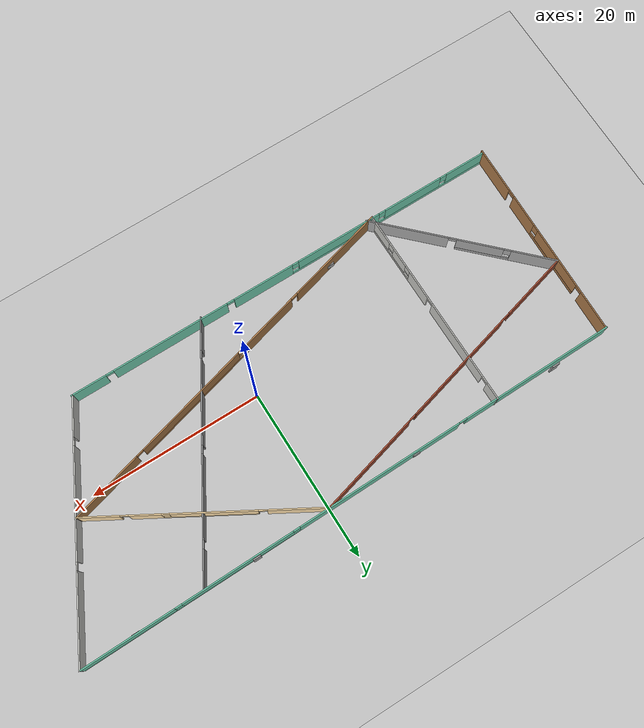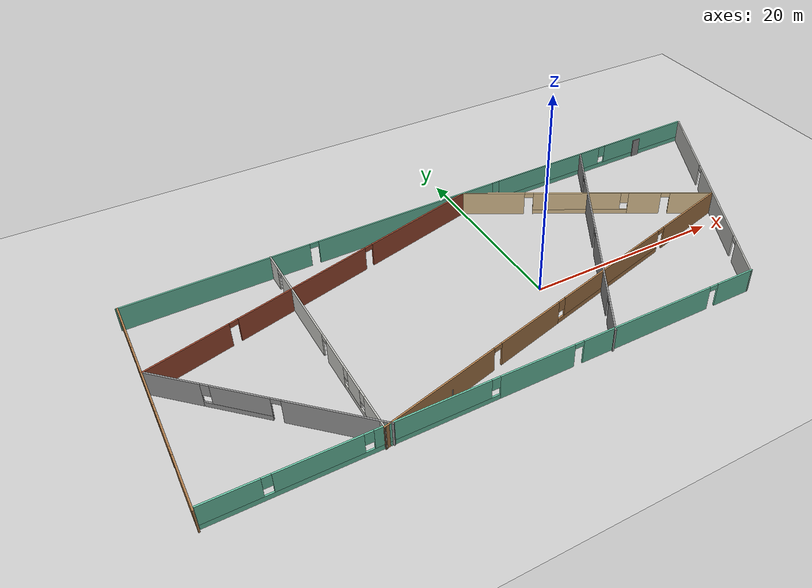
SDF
<sdf version="1.7">
 <world name="default">
  <model name="ground_plane">
   <static>1</static>
   <link name="link">
    <collision name="collision">
     <geometry><plane><normal>0 0 1</normal><size>100 100</size></plane></geometry>
     <surface>
      <contact><collide_bitmask>65535</collide_bitmask></contact>
      <friction><ode><mu>100</mu><mu2>50</mu2></ode></friction>
     </surface>
    </collision>
    <visual name="visual">
     <cast_shadows>0</cast_shadows>
     <geometry><plane><normal>0 0 1</normal><size>100 100</size></plane></geometry>
     <material>
      <script><uri>file://media/materials/scripts/gazebo.material</uri><name>Gazebo/Grey</name></script>
     </material>
    </visual>
   </link>
  </model>
  <model name="Building">
   <pose>-3.14962 2.4136 0 0 -0 0</pose>
   <link name="Door_0">
    <collision name="Door_0_Collision">
     <geometry><box><size>0.9 0.17 2</size></box></geometry>
     <pose>0 0 1 0 -0 0</pose>
    </collision>
    <visual name="Door_0_Visual">
     <pose>0 0 1 0 -0 0</pose>
     <geometry><box><size>0.9 0.17 2</size></box></geometry>
     <material>
      <script><uri>file://media/materials/scripts/gazebo.material</uri><name>Gazebo/Grey</name></script>
     </material>
    </visual>
    <pose>-25.1642 11.9657 0 0 -0 0</pose>
   </link>
   <link name="Door_19">
    <collision name="Door_19_Collision">
     <geometry><box><size>0.9 0.17 2</size></box></geometry>
     <pose>0 0 1 0 -0 0</pose>
    </collision>
    <visual name="Door_19_Visual">
     <pose>0 0 1 0 -0 0</pose>
     <geometry><box><size>0.9 0.17 2</size></box></geometry>
     <material>
      <script><uri>file://media/materials/scripts/gazebo.material</uri><name>Gazebo/Grey</name></script>
     </material>
    </visual>
    <pose>26.0112 12.2744 0 0 -0 0</pose>
   </link>
   <link name="Door_25">
    <collision name="Door_25_Collision">
     <geometry><box><size>0.9 0.17 2</size></box></geometry>
     <pose>0 0 1 0 -0 0</pose>
    </collision>
    <visual name="Door_25_Visual">
     <pose>0 0 1 0 -0 0</pose>
     <geometry><box><size>0.9 0.17 2</size></box></geometry>
     <material>
      <script><uri>file://media/materials/scripts/gazebo.material</uri><name>Gazebo/Grey</name></script>
     </material>
    </visual>
    <pose>12.012 12.3054 0 0 -0 0</pose>
   </link>
   <link name="Wall_0">
    <pose>-32.1052 -0.483581 0 0 -0 1.54834</pose>
    <visual name="Wall_0_Visual_0">
     <pose>-9.26842 0 1.25 0 -0 0</pose>
     <geometry><box><size>5.57682 0.15 2.5</size></box></geometry>
     <material>
      <script><uri>file://media/materials/scripts/gazebo.material</uri><name>Gazebo/Wood</name></script>
      <ambient>1 1 1 1</ambient>
     </material>
     <meta><layer>0</layer></meta>
    </visual>
    <collision name="Wall_0_Collision_0">
     <geometry><box><size>5.57682 0.15 2.5</size></box></geometry>
     <pose>-9.26842 0 1.25 0 -0 0</pose>
    </collision>
    <visual name="Wall_0_Visual_1">
     <pose>-3.61912 0 1.25 0 -0 0</pose>
     <geometry><box><size>3.92177 0.15 2.5</size></box></geometry>
     <material>
      <script><uri>file://media/materials/scripts/gazebo.material</uri><name>Gazebo/Wood</name></script>
      <ambient>1 1 1 1</ambient>
     </material>
     <meta><layer>0</layer></meta>
    </visual>
    <collision name="Wall_0_Collision_1">
     <geometry><box><size>3.92177 0.15 2.5</size></box></geometry>
     <pose>-3.61912 0 1.25 0 -0 0</pose>
    </collision>
    <visual name="Wall_0_Visual_2">
     <pose>9.71831 0 1.25 0 -0 0</pose>
     <geometry><box><size>4.67703 0.15 2.5</size></box></geometry>
     <material>
      <script><uri>file://media/materials/scripts/gazebo.material</uri><name>Gazebo/Wood</name></script>
      <ambient>1 1 1 1</ambient>
     </material>
     <meta><layer>0</layer></meta>
    </visual>
    <collision name="Wall_0_Collision_2">
     <geometry><box><size>4.67703 0.15 2.5</size></box></geometry>
     <pose>9.71831 0 1.25 0 -0 0</pose>
    </collision>
    <visual name="Wall_0_Visual_3">
     <pose>2.41078 0 0.25 0 -0 0</pose>
     <geometry><box><size>8.13804 0.15 0.5</size></box></geometry>
     <material>
      <script><uri>file://media/materials/scripts/gazebo.material</uri><name>Gazebo/Wood</name></script>
      <ambient>1 1 1 1</ambient>
     </material>
     <meta><layer>0</layer></meta>
    </visual>
    <collision name="Wall_0_Collision_3">
     <geometry><box><size>8.13804 0.15 0.5</size></box></geometry>
     <pose>2.41078 0 0.25 0 -0 0</pose>
    </collision>
    <visual name="Wall_0_Visual_4">
     <pose>2.81078 0 1.5 0 -0 0</pose>
     <geometry><box><size>7.33803 0.15 2</size></box></geometry>
     <material>
      <script><uri>file://media/materials/scripts/gazebo.material</uri><name>Gazebo/Wood</name></script>
      <ambient>1 1 1 1</ambient>
     </material>
     <meta><layer>0</layer></meta>
    </visual>
    <collision name="Wall_0_Collision_4">
     <geometry><box><size>7.33803 0.15 2</size></box></geometry>
     <pose>2.81078 0 1.5 0 -0 0</pose>
    </collision>
    <visual name="Wall_0_Visual_5">
     <pose>-1.25824 0 1.9 0 -0 0</pose>
     <geometry><box><size>0.8 0.15 1.2</size></box></geometry>
     <material>
      <script><uri>file://media/materials/scripts/gazebo.material</uri><name>Gazebo/Wood</name></script>
      <ambient>1 1 1 1</ambient>
     </material>
     <meta><layer>0</layer></meta>
    </visual>
    <collision name="Wall_0_Collision_5">
     <geometry><box><size>0.8 0.15 1.2</size></box></geometry>
     <pose>-1.25824 0 1.9 0 -0 0</pose>
    </collision>
    <visual name="Wall_0_Visual_6">
     <pose>-6.03001 0 2.25 0 -0 0</pose>
     <geometry><box><size>0.9 0.15 0.5</size></box></geometry>
     <material>
      <script><uri>file://media/materials/scripts/gazebo.material</uri><name>Gazebo/Wood</name></script>
      <ambient>1 1 1 1</ambient>
     </material>
     <meta><layer>0</layer></meta>
    </visual>
    <collision name="Wall_0_Collision_6">
     <geometry><box><size>0.9 0.15 0.5</size></box></geometry>
     <pose>-6.03001 0 2.25 0 -0 0</pose>
    </collision>
    <visual name="Wall_0_Visual_7">
     <pose>6.9298 0 2.25 0 -0 0</pose>
     <geometry><box><size>0.9 0.15 0.5</size></box></geometry>
     <material>
      <script><uri>file://media/materials/scripts/gazebo.material</uri><name>Gazebo/Wood</name></script>
      <ambient>1 1 1 1</ambient>
     </material>
     <meta><layer>0</layer></meta>
    </visual>
    <collision name="Wall_0_Collision_7">
     <geometry><box><size>0.9 0.15 0.5</size></box></geometry>
     <pose>6.9298 0 2.25 0 -0 0</pose>
    </collision>
   </link>
   <link name="Wall_1">
    <pose>0.1492 11.9795 0 0 -0 0.015088</pose>
    <visual name="Wall_1_Visual_0">
     <pose>-23.0722 0 1.25 0 -0 0</pose>
     <geometry><box><size>18.1988 0.15 2.5</size></box></geometry>
     <material>
      <script><uri>file://media/materials/scripts/gazebo.material</uri><name>Gazebo/Grey</name></script>
      <ambient>0.435294 0.796078 0.67451 1</ambient>
     </material>
     <meta><layer>0</layer></meta>
    </visual>
    <collision name="Wall_1_Collision_0">
     <geometry><box><size>18.1988 0.15 2.5</size></box></geometry>
     <pose>-23.0722 0 1.25 0 -0 0</pose>
    </collision>
    <visual name="Wall_1_Visual_1">
     <pose>-3.237 0 1.25 0 -0 0</pose>
     <geometry><box><size>19.6716 0.15 2.5</size></box></geometry>
     <material>
      <script><uri>file://media/materials/scripts/gazebo.material</uri><name>Gazebo/Grey</name></script>
      <ambient>0.435294 0.796078 0.67451 1</ambient>
     </material>
     <meta><layer>0</layer></meta>
    </visual>
    <collision name="Wall_1_Collision_1">
     <geometry><box><size>19.6716 0.15 2.5</size></box></geometry>
     <pose>-3.237 0 1.25 0 -0 0</pose>
    </collision>
    <visual name="Wall_1_Visual_2">
     <pose>19.3852 0 0.25 0 -0 0</pose>
     <geometry><box><size>25.5729 0.15 0.5</size></box></geometry>
     <material>
      <script><uri>file://media/materials/scripts/gazebo.material</uri><name>Gazebo/Grey</name></script>
      <ambient>0.435294 0.796078 0.67451 1</ambient>
     </material>
     <meta><layer>0</layer></meta>
    </visual>
    <collision name="Wall_1_Collision_2">
     <geometry><box><size>25.5729 0.15 0.5</size></box></geometry>
     <pose>19.3852 0 0.25 0 -0 0</pose>
    </collision>
    <visual name="Wall_1_Visual_3">
     <pose>13.974 0 1.5 0 -0 0</pose>
     <geometry><box><size>13.1505 0.15 2</size></box></geometry>
     <material>
      <script><uri>file://media/materials/scripts/gazebo.material</uri><name>Gazebo/Grey</name></script>
      <ambient>0.435294 0.796078 0.67451 1</ambient>
     </material>
     <meta><layer>0</layer></meta>
    </visual>
    <collision name="Wall_1_Collision_3">
     <geometry><box><size>13.1505 0.15 2</size></box></geometry>
     <pose>13.974 0 1.5 0 -0 0</pose>
    </collision>
    <visual name="Wall_1_Visual_4">
     <pose>26.7605 0 1.5 0 -0 0</pose>
     <geometry><box><size>10.8224 0.15 2</size></box></geometry>
     <material>
      <script><uri>file://media/materials/scripts/gazebo.material</uri><name>Gazebo/Grey</name></script>
      <ambient>0.435294 0.796078 0.67451 1</ambient>
     </material>
     <meta><layer>0</layer></meta>
    </visual>
    <collision name="Wall_1_Collision_4">
     <geometry><box><size>10.8224 0.15 2</size></box></geometry>
     <pose>26.7605 0 1.5 0 -0 0</pose>
    </collision>
    <visual name="Wall_1_Visual_5">
     <pose>6.9988 0 1.9 0 -0 0</pose>
     <geometry><box><size>0.8 0.15 1.2</size></box></geometry>
     <material>
      <script><uri>file://media/materials/scripts/gazebo.material</uri><name>Gazebo/Grey</name></script>
      <ambient>0.435294 0.796078 0.67451 1</ambient>
     </material>
     <meta><layer>0</layer></meta>
    </visual>
    <collision name="Wall_1_Collision_5">
     <geometry><box><size>0.8 0.15 1.2</size></box></geometry>
     <pose>6.9988 0 1.9 0 -0 0</pose>
    </collision>
    <visual name="Wall_1_Visual_6">
     <pose>20.9493 0 1.9 0 -0 0</pose>
     <geometry><box><size>0.8 0.15 1.2</size></box></geometry>
     <material>
      <script><uri>file://media/materials/scripts/gazebo.material</uri><name>Gazebo/Grey</name></script>
      <ambient>0.435294 0.796078 0.67451 1</ambient>
     </material>
     <meta><layer>0</layer></meta>
    </visual>
    <collision name="Wall_1_Collision_6">
     <geometry><box><size>0.8 0.15 1.2</size></box></geometry>
     <pose>20.9493 0 1.9 0 -0 0</pose>
    </collision>
    <visual name="Wall_1_Visual_7">
     <pose>-13.5228 0 2.25 0 -0 0</pose>
     <geometry><box><size>0.9 0.15 0.5</size></box></geometry>
     <material>
      <script><uri>file://media/materials/scripts/gazebo.material</uri><name>Gazebo/Grey</name></script>
      <ambient>0.435294 0.796078 0.67451 1</ambient>
     </material>
     <meta><layer>0</layer></meta>
    </visual>
    <collision name="Wall_1_Collision_7">
     <geometry><box><size>0.9 0.15 0.5</size></box></geometry>
     <pose>-13.5228 0 2.25 0 -0 0</pose>
    </collision>
   </link>
   <link name="Wall_11">
    <pose>10.9787 -0.186477 0 0 -0 1.0472</pose>
    <visual name="Wall_11_Visual_0">
     <pose>-12.3766 0 1.25 0 -0 0</pose>
     <geometry><box><size>3.74686 0.15 2.5</size></box></geometry>
     <material>
      <script><uri>file://media/materials/scripts/gazebo.material</uri><name>Gazebo/Grey</name></script>
      <ambient>1 1 1 1</ambient>
     </material>
     <meta><layer>0</layer></meta>
    </visual>
    <collision name="Wall_11_Collision_0">
     <geometry><box><size>3.74686 0.15 2.5</size></box></geometry>
     <pose>-12.3766 0 1.25 0 -0 0</pose>
    </collision>
    <visual name="Wall_11_Visual_1">
     <pose>-4.96596 0 1.25 0 -0 0</pose>
     <geometry><box><size>9.27435 0.15 2.5</size></box></geometry>
     <material>
      <script><uri>file://media/materials/scripts/gazebo.material</uri><name>Gazebo/Grey</name></script>
      <ambient>1 1 1 1</ambient>
     </material>
     <meta><layer>0</layer></meta>
    </visual>
    <collision name="Wall_11_Collision_1">
     <geometry><box><size>9.27435 0.15 2.5</size></box></geometry>
     <pose>-4.96596 0 1.25 0 -0 0</pose>
    </collision>
    <visual name="Wall_11_Visual_2">
     <pose>4.98582 0 1.25 0 -0 0</pose>
     <geometry><box><size>8.82921 0.15 2.5</size></box></geometry>
     <material>
      <script><uri>file://media/materials/scripts/gazebo.material</uri><name>Gazebo/Grey</name></script>
      <ambient>1 1 1 1</ambient>
     </material>
     <meta><layer>0</layer></meta>
    </visual>
    <collision name="Wall_11_Collision_2">
     <geometry><box><size>8.82921 0.15 2.5</size></box></geometry>
     <pose>4.98582 0 1.25 0 -0 0</pose>
    </collision>
    <visual name="Wall_11_Visual_3">
     <pose>12.2752 0 1.25 0 -0 0</pose>
     <geometry><box><size>3.94958 0.15 2.5</size></box></geometry>
     <material>
      <script><uri>file://media/materials/scripts/gazebo.material</uri><name>Gazebo/Grey</name></script>
      <ambient>1 1 1 1</ambient>
     </material>
     <meta><layer>0</layer></meta>
    </visual>
    <collision name="Wall_11_Collision_3">
     <geometry><box><size>3.94958 0.15 2.5</size></box></geometry>
     <pose>12.2752 0 1.25 0 -0 0</pose>
    </collision>
    <visual name="Wall_11_Visual_4">
     <pose>-10.0531 0 2.25 0 -0 0</pose>
     <geometry><box><size>0.9 0.15 0.5</size></box></geometry>
     <material>
      <script><uri>file://media/materials/scripts/gazebo.material</uri><name>Gazebo/Grey</name></script>
      <ambient>1 1 1 1</ambient>
     </material>
     <meta><layer>0</layer></meta>
    </visual>
    <collision name="Wall_11_Collision_4">
     <geometry><box><size>0.9 0.15 0.5</size></box></geometry>
     <pose>-10.0531 0 2.25 0 -0 0</pose>
    </collision>
    <visual name="Wall_11_Visual_5">
     <pose>0.121212 0 2.25 0 -0 0</pose>
     <geometry><box><size>0.9 0.15 0.5</size></box></geometry>
     <material>
      <script><uri>file://media/materials/scripts/gazebo.material</uri><name>Gazebo/Grey</name></script>
      <ambient>1 1 1 1</ambient>
     </material>
     <meta><layer>0</layer></meta>
    </visual>
    <collision name="Wall_11_Collision_5">
     <geometry><box><size>0.9 0.15 0.5</size></box></geometry>
     <pose>0.121212 0 2.25 0 -0 0</pose>
    </collision>
    <visual name="Wall_11_Visual_6">
     <pose>9.85042 0 2.25 0 -0 0</pose>
     <geometry><box><size>0.9 0.15 0.5</size></box></geometry>
     <material>
      <script><uri>file://media/materials/scripts/gazebo.material</uri><name>Gazebo/Grey</name></script>
      <ambient>1 1 1 1</ambient>
     </material>
     <meta><layer>0</layer></meta>
    </visual>
    <collision name="Wall_11_Collision_6">
     <geometry><box><size>0.9 0.15 0.5</size></box></geometry>
     <pose>9.85042 0 2.25 0 -0 0</pose>
    </collision>
   </link>
   <link name="Wall_2">
    <pose>25.9469 0.109933 0 0 -0 -2.04897</pose>
    <visual name="Wall_2_Visual_0">
     <pose>-9.11112 0 1.25 0 -0 0</pose>
     <geometry><box><size>9.75682 0.15 2.5</size></box></geometry>
     <material>
      <script><uri>file://media/materials/scripts/gazebo.material</uri><name>Gazebo/CeilingTiled</name></script>
      <ambient>1 1 1 1</ambient>
     </material>
     <meta><layer>0</layer></meta>
    </visual>
    <collision name="Wall_2_Collision_0">
     <geometry><box><size>9.75682 0.15 2.5</size></box></geometry>
     <pose>-9.11112 0 1.25 0 -0 0</pose>
    </collision>
    <visual name="Wall_2_Visual_1">
     <pose>2.60929 0 1.25 0 -0 0</pose>
     <geometry><box><size>11.884 0.15 2.5</size></box></geometry>
     <material>
      <script><uri>file://media/materials/scripts/gazebo.material</uri><name>Gazebo/CeilingTiled</name></script>
      <ambient>1 1 1 1</ambient>
     </material>
     <meta><layer>0</layer></meta>
    </visual>
    <collision name="Wall_2_Collision_1">
     <geometry><box><size>11.884 0.15 2.5</size></box></geometry>
     <pose>2.60929 0 1.25 0 -0 0</pose>
    </collision>
    <visual name="Wall_2_Visual_2">
     <pose>11.7204 0 1.25 0 -0 0</pose>
     <geometry><box><size>4.53824 0.15 2.5</size></box></geometry>
     <material>
      <script><uri>file://media/materials/scripts/gazebo.material</uri><name>Gazebo/CeilingTiled</name></script>
      <ambient>1 1 1 1</ambient>
     </material>
     <meta><layer>0</layer></meta>
    </visual>
    <collision name="Wall_2_Collision_2">
     <geometry><box><size>4.53824 0.15 2.5</size></box></geometry>
     <pose>11.7204 0 1.25 0 -0 0</pose>
    </collision>
    <visual name="Wall_2_Visual_3">
     <pose>-3.78271 0 2.25 0 -0 0</pose>
     <geometry><box><size>0.9 0.15 0.5</size></box></geometry>
     <material>
      <script><uri>file://media/materials/scripts/gazebo.material</uri><name>Gazebo/CeilingTiled</name></script>
      <ambient>1 1 1 1</ambient>
     </material>
     <meta><layer>0</layer></meta>
    </visual>
    <collision name="Wall_2_Collision_3">
     <geometry><box><size>0.9 0.15 0.5</size></box></geometry>
     <pose>-3.78271 0 2.25 0 -0 0</pose>
    </collision>
    <visual name="Wall_2_Visual_4">
     <pose>9.0013 0 2.25 0 -0 0</pose>
     <geometry><box><size>0.9 0.15 0.5</size></box></geometry>
     <material>
      <script><uri>file://media/materials/scripts/gazebo.material</uri><name>Gazebo/CeilingTiled</name></script>
      <ambient>1 1 1 1</ambient>
     </material>
     <meta><layer>0</layer></meta>
    </visual>
    <collision name="Wall_2_Collision_4">
     <geometry><box><size>0.9 0.15 0.5</size></box></geometry>
     <pose>9.0013 0 2.25 0 -0 0</pose>
    </collision>
   </link>
   <link name="Wall_3">
    <pose>-6.27348 -12.2439 0 0 -0 3.14159</pose>
    <visual name="Wall_3_Visual_0">
     <pose>-23.9112 0 1.25 0 -0 0</pose>
     <geometry><box><size>4.17766 0.15 2.5</size></box></geometry>
     <material>
      <script><uri>file://media/materials/scripts/gazebo.material</uri><name>Gazebo/Grey</name></script>
      <ambient>0.435294 0.796078 0.67451 1</ambient>
     </material>
     <meta><layer>0</layer></meta>
    </visual>
    <collision name="Wall_3_Collision_0">
     <geometry><box><size>4.17766 0.15 2.5</size></box></geometry>
     <pose>-23.9112 0 1.25 0 -0 0</pose>
    </collision>
    <visual name="Wall_3_Visual_1">
     <pose>-13.9782 0 1.25 0 -0 0</pose>
     <geometry><box><size>13.8882 0.15 2.5</size></box></geometry>
     <material>
      <script><uri>file://media/materials/scripts/gazebo.material</uri><name>Gazebo/Grey</name></script>
      <ambient>0.435294 0.796078 0.67451 1</ambient>
     </material>
     <meta><layer>0</layer></meta>
    </visual>
    <collision name="Wall_3_Collision_1">
     <geometry><box><size>13.8882 0.15 2.5</size></box></geometry>
     <pose>-13.9782 0 1.25 0 -0 0</pose>
    </collision>
    <visual name="Wall_3_Visual_2">
     <pose>-2.48403 0 1.25 0 -0 0</pose>
     <geometry><box><size>7.30016 0.15 2.5</size></box></geometry>
     <material>
      <script><uri>file://media/materials/scripts/gazebo.material</uri><name>Gazebo/Grey</name></script>
      <ambient>0.435294 0.796078 0.67451 1</ambient>
     </material>
     <meta><layer>0</layer></meta>
    </visual>
    <collision name="Wall_3_Collision_2">
     <geometry><box><size>7.30016 0.15 2.5</size></box></geometry>
     <pose>-2.48403 0 1.25 0 -0 0</pose>
    </collision>
    <visual name="Wall_3_Visual_3">
     <pose>13.583 0 0.25 0 -0 0</pose>
     <geometry><box><size>24.8339 0.15 0.5</size></box></geometry>
     <material>
      <script><uri>file://media/materials/scripts/gazebo.material</uri><name>Gazebo/Grey</name></script>
      <ambient>0.435294 0.796078 0.67451 1</ambient>
     </material>
     <meta><layer>0</layer></meta>
    </visual>
    <collision name="Wall_3_Collision_3">
     <geometry><box><size>24.8339 0.15 0.5</size></box></geometry>
     <pose>13.583 0 0.25 0 -0 0</pose>
    </collision>
    <visual name="Wall_3_Visual_4">
     <pose>7.14759 0 1.5 0 -0 0</pose>
     <geometry><box><size>10.3631 0.15 2</size></box></geometry>
     <material>
      <script><uri>file://media/materials/scripts/gazebo.material</uri><name>Gazebo/Grey</name></script>
      <ambient>0.435294 0.796078 0.67451 1</ambient>
     </material>
     <meta><layer>0</layer></meta>
    </visual>
    <collision name="Wall_3_Collision_4">
     <geometry><box><size>10.3631 0.15 2</size></box></geometry>
     <pose>7.14759 0 1.5 0 -0 0</pose>
    </collision>
    <visual name="Wall_3_Visual_5">
     <pose>16.7493 0 1.5 0 -0 0</pose>
     <geometry><box><size>7.24039 0.15 2</size></box></geometry>
     <material>
      <script><uri>file://media/materials/scripts/gazebo.material</uri><name>Gazebo/Grey</name></script>
      <ambient>0.435294 0.796078 0.67451 1</ambient>
     </material>
     <meta><layer>0</layer></meta>
    </visual>
    <collision name="Wall_3_Collision_5">
     <geometry><box><size>7.24039 0.15 2</size></box></geometry>
     <pose>16.7493 0 1.5 0 -0 0</pose>
    </collision>
    <visual name="Wall_3_Visual_6">
     <pose>23.5848 0 1.5 0 -0 0</pose>
     <geometry><box><size>4.83048 0.15 2</size></box></geometry>
     <material>
      <script><uri>file://media/materials/scripts/gazebo.material</uri><name>Gazebo/Grey</name></script>
      <ambient>0.435294 0.796078 0.67451 1</ambient>
     </material>
     <meta><layer>0</layer></meta>
    </visual>
    <collision name="Wall_3_Collision_6">
     <geometry><box><size>4.83048 0.15 2</size></box></geometry>
     <pose>23.5848 0 1.5 0 -0 0</pose>
    </collision>
    <visual name="Wall_3_Visual_7">
     <pose>1.56605 0 1.9 0 -0 0</pose>
     <geometry><box><size>0.8 0.15 1.2</size></box></geometry>
     <material>
      <script><uri>file://media/materials/scripts/gazebo.material</uri><name>Gazebo/Grey</name></script>
      <ambient>0.435294 0.796078 0.67451 1</ambient>
     </material>
     <meta><layer>0</layer></meta>
    </visual>
    <collision name="Wall_3_Collision_7">
     <geometry><box><size>0.8 0.15 1.2</size></box></geometry>
     <pose>1.56605 0 1.9 0 -0 0</pose>
    </collision>
    <visual name="Wall_3_Visual_8">
     <pose>12.7291 0 1.9 0 -0 0</pose>
     <geometry><box><size>0.8 0.15 1.2</size></box></geometry>
     <material>
      <script><uri>file://media/materials/scripts/gazebo.material</uri><name>Gazebo/Grey</name></script>
      <ambient>0.435294 0.796078 0.67451 1</ambient>
     </material>
     <meta><layer>0</layer></meta>
    </visual>
    <collision name="Wall_3_Collision_8">
     <geometry><box><size>0.8 0.15 1.2</size></box></geometry>
     <pose>12.7291 0 1.9 0 -0 0</pose>
    </collision>
    <visual name="Wall_3_Visual_9">
     <pose>20.7695 0 1.9 0 -0 0</pose>
     <geometry><box><size>0.8 0.15 1.2</size></box></geometry>
     <material>
      <script><uri>file://media/materials/scripts/gazebo.material</uri><name>Gazebo/Grey</name></script>
      <ambient>0.435294 0.796078 0.67451 1</ambient>
     </material>
     <meta><layer>0</layer></meta>
    </visual>
    <collision name="Wall_3_Collision_9">
     <geometry><box><size>0.8 0.15 1.2</size></box></geometry>
     <pose>20.7695 0 1.9 0 -0 0</pose>
    </collision>
    <visual name="Wall_3_Visual_10">
     <pose>-21.3723 0 2.25 0 -0 0</pose>
     <geometry><box><size>0.9 0.15 0.5</size></box></geometry>
     <material>
      <script><uri>file://media/materials/scripts/gazebo.material</uri><name>Gazebo/Grey</name></script>
      <ambient>0.435294 0.796078 0.67451 1</ambient>
     </material>
     <meta><layer>0</layer></meta>
    </visual>
    <collision name="Wall_3_Collision_10">
     <geometry><box><size>0.9 0.15 0.5</size></box></geometry>
     <pose>-21.3723 0 2.25 0 -0 0</pose>
    </collision>
    <visual name="Wall_3_Visual_11">
     <pose>-6.58411 0 2.25 0 -0 0</pose>
     <geometry><box><size>0.9 0.15 0.5</size></box></geometry>
     <material>
      <script><uri>file://media/materials/scripts/gazebo.material</uri><name>Gazebo/Grey</name></script>
      <ambient>0.435294 0.796078 0.67451 1</ambient>
     </material>
     <meta><layer>0</layer></meta>
    </visual>
    <collision name="Wall_3_Collision_11">
     <geometry><box><size>0.9 0.15 0.5</size></box></geometry>
     <pose>-6.58411 0 2.25 0 -0 0</pose>
    </collision>
   </link>
   <link name="Wall_5">
    <pose>-17.7389 -0.299543 0 0 -0 -1.5708</pose>
    <visual name="Wall_5_Visual_0">
     <pose>-11.1121 0 1.25 0 -0 0</pose>
     <geometry><box><size>2.02579 0.15 2.5</size></box></geometry>
     <material>
      <script><uri>file://media/materials/scripts/gazebo.material</uri><name>Gazebo/CeilingTiled</name></script>
      <ambient>1 1 1 1</ambient>
     </material>
     <meta><layer>0</layer></meta>
    </visual>
    <collision name="Wall_5_Collision_0">
     <geometry><box><size>2.02579 0.15 2.5</size></box></geometry>
     <pose>-11.1121 0 1.25 0 -0 0</pose>
    </collision>
    <visual name="Wall_5_Visual_1">
     <pose>-4.50046 0 1.25 0 -0 0</pose>
     <geometry><box><size>9.3975 0.15 2.5</size></box></geometry>
     <material>
      <script><uri>file://media/materials/scripts/gazebo.material</uri><name>Gazebo/CeilingTiled</name></script>
      <ambient>1 1 1 1</ambient>
     </material>
     <meta><layer>0</layer></meta>
    </visual>
    <collision name="Wall_5_Collision_1">
     <geometry><box><size>9.3975 0.15 2.5</size></box></geometry>
     <pose>-4.50046 0 1.25 0 -0 0</pose>
    </collision>
    <visual name="Wall_5_Visual_2">
     <pose>2.82386 0 1.25 0 -0 0</pose>
     <geometry><box><size>3.45113 0.15 2.5</size></box></geometry>
     <material>
      <script><uri>file://media/materials/scripts/gazebo.material</uri><name>Gazebo/CeilingTiled</name></script>
      <ambient>1 1 1 1</ambient>
     </material>
     <meta><layer>0</layer></meta>
    </visual>
    <collision name="Wall_5_Collision_2">
     <geometry><box><size>3.45113 0.15 2.5</size></box></geometry>
     <pose>2.82386 0 1.25 0 -0 0</pose>
    </collision>
    <visual name="Wall_5_Visual_3">
     <pose>8.33721 0 0.25 0 -0 0</pose>
     <geometry><box><size>7.57558 0.15 0.5</size></box></geometry>
     <material>
      <script><uri>file://media/materials/scripts/gazebo.material</uri><name>Gazebo/CeilingTiled</name></script>
      <ambient>1 1 1 1</ambient>
     </material>
     <meta><layer>0</layer></meta>
    </visual>
    <collision name="Wall_5_Collision_3">
     <geometry><box><size>7.57558 0.15 0.5</size></box></geometry>
     <pose>8.33721 0 0.25 0 -0 0</pose>
    </collision>
    <visual name="Wall_5_Visual_4">
     <pose>6.50765 0 1.5 0 -0 0</pose>
     <geometry><box><size>2.31645 0.15 2</size></box></geometry>
     <material>
      <script><uri>file://media/materials/scripts/gazebo.material</uri><name>Gazebo/CeilingTiled</name></script>
      <ambient>1 1 1 1</ambient>
     </material>
     <meta><layer>0</layer></meta>
    </visual>
    <collision name="Wall_5_Collision_4">
     <geometry><box><size>2.31645 0.15 2</size></box></geometry>
     <pose>6.50765 0 1.5 0 -0 0</pose>
    </collision>
    <visual name="Wall_5_Visual_5">
     <pose>10.2954 0 1.5 0 -0 0</pose>
     <geometry><box><size>3.65912 0.15 2</size></box></geometry>
     <material>
      <script><uri>file://media/materials/scripts/gazebo.material</uri><name>Gazebo/CeilingTiled</name></script>
      <ambient>1 1 1 1</ambient>
     </material>
     <meta><layer>0</layer></meta>
    </visual>
    <collision name="Wall_5_Collision_5">
     <geometry><box><size>3.65912 0.15 2</size></box></geometry>
     <pose>10.2954 0 1.5 0 -0 0</pose>
    </collision>
    <visual name="Wall_5_Visual_6">
     <pose>4.94942 0 1.9 0 -0 0</pose>
     <geometry><box><size>0.8 0.15 1.2</size></box></geometry>
     <material>
      <script><uri>file://media/materials/scripts/gazebo.material</uri><name>Gazebo/CeilingTiled</name></script>
      <ambient>1 1 1 1</ambient>
     </material>
     <meta><layer>0</layer></meta>
    </visual>
    <collision name="Wall_5_Collision_6">
     <geometry><box><size>0.8 0.15 1.2</size></box></geometry>
     <pose>4.94942 0 1.9 0 -0 0</pose>
    </collision>
    <visual name="Wall_5_Visual_7">
     <pose>8.06588 0 1.9 0 -0 0</pose>
     <geometry><box><size>0.8 0.15 1.2</size></box></geometry>
     <material>
      <script><uri>file://media/materials/scripts/gazebo.material</uri><name>Gazebo/CeilingTiled</name></script>
      <ambient>1 1 1 1</ambient>
     </material>
     <meta><layer>0</layer></meta>
    </visual>
    <collision name="Wall_5_Collision_7">
     <geometry><box><size>0.8 0.15 1.2</size></box></geometry>
     <pose>8.06588 0 1.9 0 -0 0</pose>
    </collision>
    <visual name="Wall_5_Visual_8">
     <pose>-9.64921 0 2.25 0 -0 0</pose>
     <geometry><box><size>0.9 0.15 0.5</size></box></geometry>
     <material>
      <script><uri>file://media/materials/scripts/gazebo.material</uri><name>Gazebo/CeilingTiled</name></script>
      <ambient>1 1 1 1</ambient>
     </material>
     <meta><layer>0</layer></meta>
    </visual>
    <collision name="Wall_5_Collision_8">
     <geometry><box><size>0.9 0.15 0.5</size></box></geometry>
     <pose>-9.64921 0 2.25 0 -0 0</pose>
    </collision>
    <visual name="Wall_5_Visual_9">
     <pose>0.648291 0 2.25 0 -0 0</pose>
     <geometry><box><size>0.9 0.15 0.5</size></box></geometry>
     <material>
      <script><uri>file://media/materials/scripts/gazebo.material</uri><name>Gazebo/CeilingTiled</name></script>
      <ambient>1 1 1 1</ambient>
     </material>
     <meta><layer>0</layer></meta>
    </visual>
    <collision name="Wall_5_Collision_9">
     <geometry><box><size>0.9 0.15 0.5</size></box></geometry>
     <pose>0.648291 0 2.25 0 -0 0</pose>
    </collision>
   </link>
   <link name="Wall_6">
    <pose>3.80122 -6.57788 0 0 -0 0.261799</pose>
    <visual name="Wall_6_Visual_0">
     <pose>-16.3639 0 1.25 0 -0 0</pose>
     <geometry><box><size>12.0221 0.15 2.5</size></box></geometry>
     <material>
      <script><uri>file://media/materials/scripts/gazebo.material</uri><name>Gazebo/Wood</name></script>
      <ambient>1 1 1 1</ambient>
     </material>
     <meta><layer>0</layer></meta>
    </visual>
    <collision name="Wall_6_Collision_0">
     <geometry><box><size>12.0221 0.15 2.5</size></box></geometry>
     <pose>-16.3639 0 1.25 0 -0 0</pose>
    </collision>
    <visual name="Wall_6_Visual_1">
     <pose>-5.76491 0 1.25 0 -0 0</pose>
     <geometry><box><size>7.37596 0.15 2.5</size></box></geometry>
     <material>
      <script><uri>file://media/materials/scripts/gazebo.material</uri><name>Gazebo/Wood</name></script>
      <ambient>1 1 1 1</ambient>
     </material>
     <meta><layer>0</layer></meta>
    </visual>
    <collision name="Wall_6_Collision_1">
     <geometry><box><size>7.37596 0.15 2.5</size></box></geometry>
     <pose>-5.76491 0 1.25 0 -0 0</pose>
    </collision>
    <visual name="Wall_6_Visual_2">
     <pose>18.0508 0 1.25 0 -0 0</pose>
     <geometry><box><size>8.64846 0.15 2.5</size></box></geometry>
     <material>
      <script><uri>file://media/materials/scripts/gazebo.material</uri><name>Gazebo/Wood</name></script>
      <ambient>1 1 1 1</ambient>
     </material>
     <meta><layer>0</layer></meta>
    </visual>
    <collision name="Wall_6_Collision_2">
     <geometry><box><size>8.64846 0.15 2.5</size></box></geometry>
     <pose>18.0508 0 1.25 0 -0 0</pose>
    </collision>
    <visual name="Wall_6_Visual_3">
     <pose>5.3748 0 0.25 0 -0 0</pose>
     <geometry><box><size>14.9035 0.15 0.5</size></box></geometry>
     <material>
      <script><uri>file://media/materials/scripts/gazebo.material</uri><name>Gazebo/Wood</name></script>
      <ambient>1 1 1 1</ambient>
     </material>
     <meta><layer>0</layer></meta>
    </visual>
    <collision name="Wall_6_Collision_3">
     <geometry><box><size>14.9035 0.15 0.5</size></box></geometry>
     <pose>5.3748 0 0.25 0 -0 0</pose>
    </collision>
    <visual name="Wall_6_Visual_4">
     <pose>5.7748 0 1.5 0 -0 0</pose>
     <geometry><box><size>14.1035 0.15 2</size></box></geometry>
     <material>
      <script><uri>file://media/materials/scripts/gazebo.material</uri><name>Gazebo/Wood</name></script>
      <ambient>1 1 1 1</ambient>
     </material>
     <meta><layer>0</layer></meta>
    </visual>
    <collision name="Wall_6_Collision_4">
     <geometry><box><size>14.1035 0.15 2</size></box></geometry>
     <pose>5.7748 0 1.5 0 -0 0</pose>
    </collision>
    <visual name="Wall_6_Visual_5">
     <pose>-1.67693 0 1.9 0 -0 0</pose>
     <geometry><box><size>0.8 0.15 1.2</size></box></geometry>
     <material>
      <script><uri>file://media/materials/scripts/gazebo.material</uri><name>Gazebo/Wood</name></script>
      <ambient>1 1 1 1</ambient>
     </material>
     <meta><layer>0</layer></meta>
    </visual>
    <collision name="Wall_6_Collision_5">
     <geometry><box><size>0.8 0.15 1.2</size></box></geometry>
     <pose>-1.67693 0 1.9 0 -0 0</pose>
    </collision>
    <visual name="Wall_6_Visual_6">
     <pose>-9.90289 0 2.25 0 -0 0</pose>
     <geometry><box><size>0.9 0.15 0.5</size></box></geometry>
     <material>
      <script><uri>file://media/materials/scripts/gazebo.material</uri><name>Gazebo/Wood</name></script>
      <ambient>1 1 1 1</ambient>
     </material>
     <meta><layer>0</layer></meta>
    </visual>
    <collision name="Wall_6_Collision_6">
     <geometry><box><size>0.9 0.15 0.5</size></box></geometry>
     <pose>-9.90289 0 2.25 0 -0 0</pose>
    </collision>
    <visual name="Wall_6_Visual_7">
     <pose>13.2765 0 2.25 0 -0 0</pose>
     <geometry><box><size>0.9 0.15 0.5</size></box></geometry>
     <material>
      <script><uri>file://media/materials/scripts/gazebo.material</uri><name>Gazebo/Wood</name></script>
      <ambient>1 1 1 1</ambient>
     </material>
     <meta><layer>0</layer></meta>
    </visual>
    <collision name="Wall_6_Collision_7">
     <geometry><box><size>0.9 0.15 0.5</size></box></geometry>
     <pose>13.2765 0 2.25 0 -0 0</pose>
    </collision>
   </link>
   <link name="Wall_7">
    <pose>14.2562 5.59379 0 0 -0 2.61799</pose>
    <visual name="Wall_7_Visual_0">
     <pose>-10.6722 0 1.25 0 -0 0</pose>
     <geometry><box><size>4.4056 0.15 2.5</size></box></geometry>
     <material>
      <script><uri>file://media/materials/scripts/gazebo.material</uri><name>Gazebo/Grey</name></script>
      <ambient>0.921569 0.807843 0.615686 1</ambient>
     </material>
     <meta><layer>0</layer></meta>
    </visual>
    <collision name="Wall_7_Collision_0">
     <geometry><box><size>4.4056 0.15 2.5</size></box></geometry>
     <pose>-10.6722 0 1.25 0 -0 0</pose>
    </collision>
    <visual name="Wall_7_Visual_1">
     <pose>-5.90475 0 1.25 0 -0 0</pose>
     <geometry><box><size>3.3293 0.15 2.5</size></box></geometry>
     <material>
      <script><uri>file://media/materials/scripts/gazebo.material</uri><name>Gazebo/Grey</name></script>
      <ambient>0.921569 0.807843 0.615686 1</ambient>
     </material>
     <meta><layer>0</layer></meta>
    </visual>
    <collision name="Wall_7_Collision_1">
     <geometry><box><size>3.3293 0.15 2.5</size></box></geometry>
     <pose>-5.90475 0 1.25 0 -0 0</pose>
    </collision>
    <visual name="Wall_7_Visual_2">
     <pose>9.67634 0 1.25 0 -0 0</pose>
     <geometry><box><size>6.39732 0.15 2.5</size></box></geometry>
     <material>
      <script><uri>file://media/materials/scripts/gazebo.material</uri><name>Gazebo/Grey</name></script>
      <ambient>0.921569 0.807843 0.615686 1</ambient>
     </material>
     <meta><layer>0</layer></meta>
    </visual>
    <collision name="Wall_7_Collision_2">
     <geometry><box><size>6.39732 0.15 2.5</size></box></geometry>
     <pose>9.67634 0 1.25 0 -0 0</pose>
    </collision>
    <visual name="Wall_7_Visual_3">
     <pose>0.668792 0 0.25 0 -0 0</pose>
     <geometry><box><size>9.81778 0.15 0.5</size></box></geometry>
     <material>
      <script><uri>file://media/materials/scripts/gazebo.material</uri><name>Gazebo/Grey</name></script>
      <ambient>0.921569 0.807843 0.615686 1</ambient>
     </material>
     <meta><layer>0</layer></meta>
    </visual>
    <collision name="Wall_7_Collision_3">
     <geometry><box><size>9.81778 0.15 0.5</size></box></geometry>
     <pose>0.668792 0 0.25 0 -0 0</pose>
    </collision>
    <visual name="Wall_7_Visual_4">
     <pose>1.06879 0 1.5 0 -0 0</pose>
     <geometry><box><size>9.01778 0.15 2</size></box></geometry>
     <material>
      <script><uri>file://media/materials/scripts/gazebo.material</uri><name>Gazebo/Grey</name></script>
      <ambient>0.921569 0.807843 0.615686 1</ambient>
     </material>
     <meta><layer>0</layer></meta>
    </visual>
    <collision name="Wall_7_Collision_4">
     <geometry><box><size>9.01778 0.15 2</size></box></geometry>
     <pose>1.06879 0 1.5 0 -0 0</pose>
    </collision>
    <visual name="Wall_7_Visual_5">
     <pose>-3.8401 0 1.9 0 -0 0</pose>
     <geometry><box><size>0.8 0.15 1.2</size></box></geometry>
     <material>
      <script><uri>file://media/materials/scripts/gazebo.material</uri><name>Gazebo/Grey</name></script>
      <ambient>0.921569 0.807843 0.615686 1</ambient>
     </material>
     <meta><layer>0</layer></meta>
    </visual>
    <collision name="Wall_7_Collision_5">
     <geometry><box><size>0.8 0.15 1.2</size></box></geometry>
     <pose>-3.8401 0 1.9 0 -0 0</pose>
    </collision>
    <visual name="Wall_7_Visual_6">
     <pose>-8.0194 0 2.25 0 -0 0</pose>
     <geometry><box><size>0.9 0.15 0.5</size></box></geometry>
     <material>
      <script><uri>file://media/materials/scripts/gazebo.material</uri><name>Gazebo/Grey</name></script>
      <ambient>0.921569 0.807843 0.615686 1</ambient>
     </material>
     <meta><layer>0</layer></meta>
    </visual>
    <collision name="Wall_7_Collision_6">
     <geometry><box><size>0.9 0.15 0.5</size></box></geometry>
     <pose>-8.0194 0 2.25 0 -0 0</pose>
    </collision>
    <visual name="Wall_7_Visual_7">
     <pose>6.02768 0 2.25 0 -0 0</pose>
     <geometry><box><size>0.9 0.15 0.5</size></box></geometry>
     <material>
      <script><uri>file://media/materials/scripts/gazebo.material</uri><name>Gazebo/Grey</name></script>
      <ambient>0.921569 0.807843 0.615686 1</ambient>
     </material>
     <meta><layer>0</layer></meta>
    </visual>
    <collision name="Wall_7_Collision_7">
     <geometry><box><size>0.9 0.15 0.5</size></box></geometry>
     <pose>6.02768 0 2.25 0 -0 0</pose>
    </collision>
   </link>
   <link name="Wall_8">
    <pose>-14.3846 7.28975 0 0 -0 -2.87979</pose>
    <visual name="Wall_8_Visual_0">
     <pose>-12.0748 0 1.25 0 -0 0</pose>
     <geometry><box><size>12.3505 0.15 2.5</size></box></geometry>
     <material>
      <script><uri>file://media/materials/scripts/gazebo.material</uri><name>Gazebo/Bricks</name></script>
      <ambient>1 1 1 1</ambient>
     </material>
     <meta><layer>0</layer></meta>
    </visual>
    <collision name="Wall_8_Collision_0">
     <geometry><box><size>12.3505 0.15 2.5</size></box></geometry>
     <pose>-12.0748 0 1.25 0 -0 0</pose>
    </collision>
    <visual name="Wall_8_Visual_1">
     <pose>2.08172 0 1.25 0 -0 0</pose>
     <geometry><box><size>14.1624 0.15 2.5</size></box></geometry>
     <material>
      <script><uri>file://media/materials/scripts/gazebo.material</uri><name>Gazebo/Bricks</name></script>
      <ambient>1 1 1 1</ambient>
     </material>
     <meta><layer>0</layer></meta>
    </visual>
    <collision name="Wall_8_Collision_1">
     <geometry><box><size>14.1624 0.15 2.5</size></box></geometry>
     <pose>2.08172 0 1.25 0 -0 0</pose>
    </collision>
    <visual name="Wall_8_Visual_2">
     <pose>14.1565 0 1.25 0 -0 0</pose>
     <geometry><box><size>8.18706 0.15 2.5</size></box></geometry>
     <material>
      <script><uri>file://media/materials/scripts/gazebo.material</uri><name>Gazebo/Bricks</name></script>
      <ambient>1 1 1 1</ambient>
     </material>
     <meta><layer>0</layer></meta>
    </visual>
    <collision name="Wall_8_Collision_2">
     <geometry><box><size>8.18706 0.15 2.5</size></box></geometry>
     <pose>14.1565 0 1.25 0 -0 0</pose>
    </collision>
    <visual name="Wall_8_Visual_3">
     <pose>-5.44951 0 2.25 0 -0 0</pose>
     <geometry><box><size>0.9 0.15 0.5</size></box></geometry>
     <material>
      <script><uri>file://media/materials/scripts/gazebo.material</uri><name>Gazebo/Bricks</name></script>
      <ambient>1 1 1 1</ambient>
     </material>
     <meta><layer>0</layer></meta>
    </visual>
    <collision name="Wall_8_Collision_3">
     <geometry><box><size>0.9 0.15 0.5</size></box></geometry>
     <pose>-5.44951 0 2.25 0 -0 0</pose>
    </collision>
    <visual name="Wall_8_Visual_4">
     <pose>9.61294 0 2.25 0 -0 0</pose>
     <geometry><box><size>0.9 0.15 0.5</size></box></geometry>
     <material>
      <script><uri>file://media/materials/scripts/gazebo.material</uri><name>Gazebo/Bricks</name></script>
      <ambient>1 1 1 1</ambient>
     </material>
     <meta><layer>0</layer></meta>
    </visual>
    <collision name="Wall_8_Collision_4">
     <geometry><box><size>0.9 0.15 0.5</size></box></geometry>
     <pose>9.61294 0 2.25 0 -0 0</pose>
    </collision>
   </link>
   <link name="Wall_9">
    <pose>-24.4803 -4.87426 0 0 -0 -0.785398</pose>
    <visual name="Wall_9_Visual_0">
     <pose>-8.05819 0 1.25 0 -0 0</pose>
     <geometry><box><size>5.13362 0.15 2.5</size></box></geometry>
     <material>
      <script><uri>file://media/materials/scripts/gazebo.material</uri><name>Gazebo/Grey</name></script>
      <ambient>1 1 1 1</ambient>
     </material>
     <meta><layer>0</layer></meta>
    </visual>
    <collision name="Wall_9_Collision_0">
     <geometry><box><size>5.13362 0.15 2.5</size></box></geometry>
     <pose>-8.05819 0 1.25 0 -0 0</pose>
    </collision>
    <visual name="Wall_9_Visual_1">
     <pose>6.02457 0 1.25 0 -0 0</pose>
     <geometry><box><size>9.20086 0.15 2.5</size></box></geometry>
     <material>
      <script><uri>file://media/materials/scripts/gazebo.material</uri><name>Gazebo/Grey</name></script>
      <ambient>1 1 1 1</ambient>
     </material>
     <meta><layer>0</layer></meta>
    </visual>
    <collision name="Wall_9_Collision_1">
     <geometry><box><size>9.20086 0.15 2.5</size></box></geometry>
     <pose>6.02457 0 1.25 0 -0 0</pose>
    </collision>
    <visual name="Wall_9_Visual_2">
     <pose>-2.48362 0 0.25 0 -0 0</pose>
     <geometry><box><size>6.01552 0.15 0.5</size></box></geometry>
     <material>
      <script><uri>file://media/materials/scripts/gazebo.material</uri><name>Gazebo/Grey</name></script>
      <ambient>1 1 1 1</ambient>
     </material>
     <meta><layer>0</layer></meta>
    </visual>
    <collision name="Wall_9_Collision_2">
     <geometry><box><size>6.01552 0.15 0.5</size></box></geometry>
     <pose>-2.48362 0 0.25 0 -0 0</pose>
    </collision>
    <visual name="Wall_9_Visual_3">
     <pose>-2.08362 0 1.5 0 -0 0</pose>
     <geometry><box><size>5.21552 0.15 2</size></box></geometry>
     <material>
      <script><uri>file://media/materials/scripts/gazebo.material</uri><name>Gazebo/Grey</name></script>
      <ambient>1 1 1 1</ambient>
     </material>
     <meta><layer>0</layer></meta>
    </visual>
    <collision name="Wall_9_Collision_3">
     <geometry><box><size>5.21552 0.15 2</size></box></geometry>
     <pose>-2.08362 0 1.5 0 -0 0</pose>
    </collision>
    <visual name="Wall_9_Visual_4">
     <pose>-5.09138 0 1.9 0 -0 0</pose>
     <geometry><box><size>0.8 0.15 1.2</size></box></geometry>
     <material>
      <script><uri>file://media/materials/scripts/gazebo.material</uri><name>Gazebo/Grey</name></script>
      <ambient>1 1 1 1</ambient>
     </material>
     <meta><layer>0</layer></meta>
    </visual>
    <collision name="Wall_9_Collision_4">
     <geometry><box><size>0.8 0.15 1.2</size></box></geometry>
     <pose>-5.09138 0 1.9 0 -0 0</pose>
    </collision>
    <visual name="Wall_9_Visual_5">
     <pose>0.974136 0 2.25 0 -0 0</pose>
     <geometry><box><size>0.9 0.15 0.5</size></box></geometry>
     <material>
      <script><uri>file://media/materials/scripts/gazebo.material</uri><name>Gazebo/Grey</name></script>
      <ambient>1 1 1 1</ambient>
     </material>
     <meta><layer>0</layer></meta>
    </visual>
    <collision name="Wall_9_Collision_5">
     <geometry><box><size>0.9 0.15 0.5</size></box></geometry>
     <pose>0.974136 0 2.25 0 -0 0</pose>
    </collision>
   </link>
   <link name="Window_12">
    <collision name="Window_12_Collision">
     <geometry><box><size>0.8 0.17 0.8</size></box></geometry>
     <pose>0 0 0.4 0 -0 0</pose>
    </collision>
    <visual name="Window_12_Visual">
     <pose>0 0 0.4 0 -0 0</pose>
     <geometry><box><size>0.8 0.17 0.8</size></box></geometry>
     <material>
      <script><uri>file://media/materials/scripts/gazebo.material</uri><name>Gazebo/Grey</name></script>
     </material>
    </visual>
    <pose>-11.2545 -10.5177 0.5 0 -0 0</pose>
   </link>
   <link name="Window_8">
    <collision name="Window_8_Collision">
     <geometry><box><size>0.8 0.17 0.8</size></box></geometry>
     <pose>0 0 0.4 0 -0 0</pose>
    </collision>
    <visual name="Window_8_Visual">
     <pose>0 0 0.4 0 -0 0</pose>
     <geometry><box><size>0.8 0.17 0.8</size></box></geometry>
     <material>
      <script><uri>file://media/materials/scripts/gazebo.material</uri><name>Gazebo/Grey</name></script>
     </material>
    </visual>
    <pose>-7.59567 11.9734 0.5 0 -0 0</pose>
   </link>
   <static>1</static>
  </model>
 </world>
</sdf>
